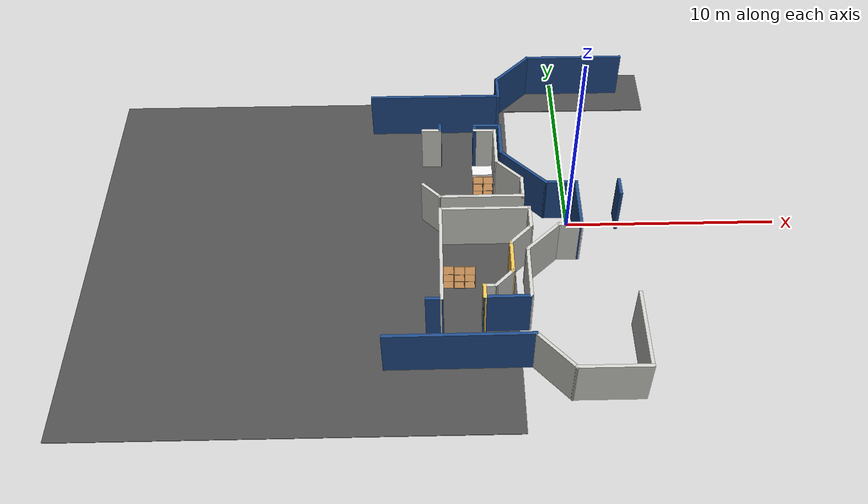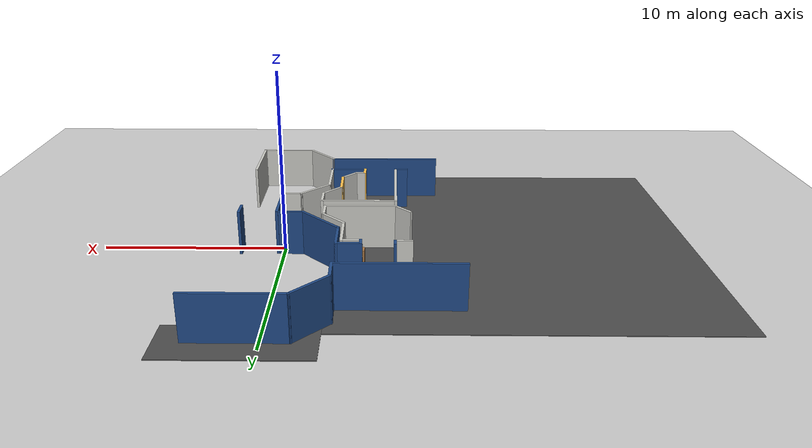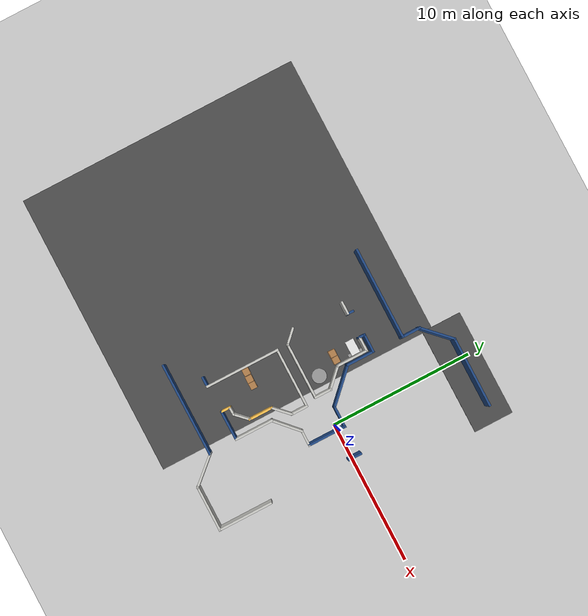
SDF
<sdf version="1.7">
 <world name="default">
  <model name="ground_plane">
   <static>1</static>
   <link name="link">
    <collision name="collision">
     <geometry><plane><normal>0 0 1</normal><size>100 100</size></plane></geometry>
     <surface><friction><ode><mu>100</mu><mu2>50</mu2></ode></friction></surface>
    </collision>
    <visual name="visual">
     <cast_shadows>0</cast_shadows>
     <geometry><plane><normal>0 0 1</normal><size>100 100</size></plane></geometry>
     <material>
      <script><uri>file://media/materials/scripts/gazebo.material</uri><name>Gazebo/Grey</name></script>
     </material>
    </visual>
   </link>
  </model>
  <model name="among_us_world">
   <pose>0.133216 -0.12311 0 0 -0 0</pose>
   <link name="Wall_0">
    <collision name="Wall_0_Collision">
     <geometry><box><size>5 0.15 2.5</size></box></geometry>
     <pose>0 0 1.25 0 -0 0</pose>
    </collision>
    <visual name="Wall_0_Visual">
     <pose>0 0 1.25 0 -0 0</pose>
     <geometry><box><size>5 0.15 2.5</size></box></geometry>
     <material>
      <script><uri>file://media/materials/scripts/gazebo.material</uri><name>Gazebo/Motorway</name></script>
      <ambient>0.12549 0.290196 0.529412 1</ambient>
     </material>
     <meta><layer>0</layer></meta>
    </visual>
    <pose>0.883234 9.56872 0 0 -0 0</pose>
   </link>
   <link name="Wall_103">
    <collision name="Wall_103_Collision">
     <geometry><box><size>1.25 0.15 2.5</size></box></geometry>
     <pose>0 0 1.25 0 -0 0</pose>
    </collision>
    <visual name="Wall_103_Visual">
     <pose>0 0 1.25 0 -0 0</pose>
     <geometry><box><size>1.25 0.15 2.5</size></box></geometry>
     <material>
      <script><uri>file://media/materials/scripts/gazebo.material</uri><name>Gazebo/CeilingTiled</name></script>
      <ambient>0.12549 0.290196 0.529412 1</ambient>
     </material>
     <meta><layer>0</layer></meta>
    </visual>
    <pose>-6.5956 0.241636 0 0 -0 -0.785398</pose>
   </link>
   <link name="Wall_104">
    <collision name="Wall_104_Collision">
     <geometry><box><size>4 0.15 2.5</size></box></geometry>
     <pose>0 0 1.25 0 -0 0</pose>
    </collision>
    <visual name="Wall_104_Visual">
     <pose>0 0 1.25 0 -0 0</pose>
     <geometry><box><size>4 0.15 2.5</size></box></geometry>
     <material>
      <script><uri>file://media/materials/scripts/gazebo.material</uri><name>Gazebo/CeilingTiled</name></script>
      <ambient>0.12549 0.290196 0.529412 1</ambient>
     </material>
     <meta><layer>0</layer></meta>
    </visual>
    <pose>-4.28169 -0.147272 0 0 -0 0</pose>
   </link>
   <link name="Wall_105">
    <collision name="Wall_105_Collision">
     <geometry><box><size>1.25 0.15 2.5</size></box></geometry>
     <pose>0 0 1.25 0 -0 0</pose>
    </collision>
    <visual name="Wall_105_Visual">
     <pose>0 0 1.25 0 -0 0</pose>
     <geometry><box><size>1.25 0.15 2.5</size></box></geometry>
     <material>
      <script><uri>file://media/materials/scripts/gazebo.material</uri><name>Gazebo/CeilingTiled</name></script>
      <ambient>0.12549 0.290196 0.529412 1</ambient>
     </material>
     <meta><layer>0</layer></meta>
    </visual>
    <pose>-2.35669 0.402728 0 0 -0 1.5708</pose>
   </link>
   <link name="Wall_106">
    <collision name="Wall_106_Collision">
     <geometry><box><size>1.75 0.15 2.5</size></box></geometry>
     <pose>0 0 1.25 0 -0 0</pose>
    </collision>
    <visual name="Wall_106_Visual">
     <pose>0 0 1.25 0 -0 0</pose>
     <geometry><box><size>1.75 0.15 2.5</size></box></geometry>
     <material>
      <script><uri>file://media/materials/scripts/gazebo.material</uri><name>Gazebo/CeilingTiled</name></script>
      <ambient>0.12549 0.290196 0.529412 1</ambient>
     </material>
     <meta><layer>0</layer></meta>
    </visual>
    <pose>-2.92238 1.51841 0 0 -0 2.35619</pose>
   </link>
   <link name="Wall_108">
    <collision name="Wall_108_Collision">
     <geometry><box><size>2.25 0.15 2.5</size></box></geometry>
     <pose>0 0 1.25 0 -0 0</pose>
    </collision>
    <visual name="Wall_108_Visual">
     <pose>0 0 1.25 0 -0 0</pose>
     <geometry><box><size>2.25 0.15 2.5</size></box></geometry>
     <material>
      <script><uri>file://media/materials/scripts/gazebo.material</uri><name>Gazebo/CeilingTiled</name></script>
      <ambient>0.12549 0.290196 0.529412 1</ambient>
     </material>
     <meta><layer>0</layer></meta>
    </visual>
    <pose>-3.48806 3.1341 0 0 -0 1.5708</pose>
   </link>
   <link name="Wall_109">
    <collision name="Wall_109_Collision">
     <geometry><box><size>1.12677 0.15 2.5</size></box></geometry>
     <pose>0 0 1.25 0 -0 0</pose>
    </collision>
    <visual name="Wall_109_Visual">
     <pose>0 0 1.25 0 -0 0</pose>
     <geometry><box><size>1.12677 0.15 2.5</size></box></geometry>
     <material>
      <script><uri>file://media/materials/scripts/gazebo.material</uri><name>Gazebo/CeilingTiled</name></script>
      <ambient>0.12549 0.290196 0.529412 1</ambient>
     </material>
     <meta><layer>0</layer></meta>
    </visual>
    <pose>-3.97634 4.1841 0 0 -0 3.14159</pose>
   </link>
   <link name="Wall_110">
    <collision name="Wall_110_Collision">
     <geometry><box><size>0.5 0.15 2.5</size></box></geometry>
     <pose>0 0 1.25 0 -0 0</pose>
    </collision>
    <visual name="Wall_110_Visual">
     <pose>0 0 1.25 0 -0 0</pose>
     <geometry><box><size>0.5 0.15 2.5</size></box></geometry>
     <material>
      <script><uri>file://media/materials/scripts/gazebo.material</uri><name>Gazebo/Grey</name></script>
      <ambient>0.12549 0.290196 0.529412 1</ambient>
     </material>
     <meta><layer>0</layer></meta>
    </visual>
    <pose>-4.46462 4.33852 0 0 -0 1.5708</pose>
   </link>
   <link name="Wall_111">
    <collision name="Wall_111_Collision">
     <geometry><box><size>1.37673 0.15 2.5</size></box></geometry>
     <pose>0 0 1.25 0 -0 0</pose>
    </collision>
    <visual name="Wall_111_Visual">
     <pose>0 0 1.25 0 -0 0</pose>
     <geometry><box><size>1.37673 0.15 2.5</size></box></geometry>
     <material>
      <script><uri>file://media/materials/scripts/gazebo.material</uri><name>Gazebo/Motorway</name></script>
      <ambient>0.12549 0.290196 0.529412 1</ambient>
     </material>
     <meta><layer>0</layer></meta>
    </visual>
    <pose>-3.85134 4.5341 0 0 -0 0</pose>
   </link>
   <link name="Wall_112">
    <collision name="Wall_112_Collision">
     <geometry><box><size>2 0.15 2.5</size></box></geometry>
     <pose>0 0 1.25 0 -0 0</pose>
    </collision>
    <visual name="Wall_112_Visual">
     <pose>0 0 1.25 0 -0 0</pose>
     <geometry><box><size>2 0.15 2.5</size></box></geometry>
     <material>
      <script><uri>file://media/materials/scripts/gazebo.material</uri><name>Gazebo/Motorway</name></script>
      <ambient>0.12549 0.290196 0.529412 1</ambient>
     </material>
     <meta><layer>0</layer></meta>
    </visual>
    <pose>-3.23806 3.6091 0 0 -0 -1.5708</pose>
   </link>
   <link name="Wall_114">
    <collision name="Wall_114_Collision">
     <geometry><box><size>3 0.15 2.5</size></box></geometry>
     <pose>0 0 1.25 0 -0 0</pose>
    </collision>
    <visual name="Wall_114_Visual">
     <pose>0 0 1.25 0 -0 0</pose>
     <geometry><box><size>3 0.15 2.5</size></box></geometry>
     <material>
      <script><uri>file://media/materials/scripts/gazebo.material</uri><name>Gazebo/Motorway</name></script>
      <ambient>0.12549 0.290196 0.529412 1</ambient>
     </material>
     <meta><layer>0</layer></meta>
    </visual>
    <pose>-2.23043 1.67647 0 0 -0 -0.785398</pose>
   </link>
   <link name="Wall_115">
    <collision name="Wall_115_Collision">
     <geometry><box><size>1.5655 0.15 2.5</size></box></geometry>
     <pose>0 0 1.25 0 -0 0</pose>
    </collision>
    <visual name="Wall_115_Visual">
     <pose>0 0 1.25 0 -0 0</pose>
     <geometry><box><size>1.5655 0.15 2.5</size></box></geometry>
     <material>
      <script><uri>file://media/materials/scripts/gazebo.material</uri><name>Gazebo/Motorway</name></script>
      <ambient>0.12549 0.290196 0.529412 1</ambient>
     </material>
     <meta><layer>0</layer></meta>
    </visual>
    <pose>-0.515099 0.662156 0 0 -0 -0.00945</pose>
   </link>
   <link name="Wall_116">
    <collision name="Wall_116_Collision">
     <geometry><box><size>2.75 0.15 2.5</size></box></geometry>
     <pose>0 0 1.25 0 -0 0</pose>
    </collision>
    <visual name="Wall_116_Visual">
     <pose>0 0 1.25 0 -0 0</pose>
     <geometry><box><size>2.75 0.15 2.5</size></box></geometry>
     <material>
      <script><uri>file://media/materials/scripts/gazebo.material</uri><name>Gazebo/Motorway</name></script>
      <ambient>0.12549 0.290196 0.529412 1</ambient>
     </material>
     <meta><layer>0</layer></meta>
    </visual>
    <pose>0.19261 -0.637844 0 0 -0 -1.5708</pose>
   </link>
   <link name="Wall_145">
    <collision name="Wall_145_Collision">
     <geometry><box><size>5.25 0.15 2.5</size></box></geometry>
     <pose>0 0 1.25 0 -0 0</pose>
    </collision>
    <visual name="Wall_145_Visual">
     <pose>0 0 1.25 0 -0 0</pose>
     <geometry><box><size>5.25 0.15 2.5</size></box></geometry>
     <material>
      <script><uri>file://media/materials/scripts/gazebo.material</uri><name>Gazebo/CeilingTiled</name></script>
      <ambient>1 0.764706 0.305882 1</ambient>
     </material>
     <meta><layer>0</layer></meta>
    </visual>
    <pose>-6.21277 -3.45528 0 0 -0 1.5708</pose>
   </link>
   <link name="Wall_146">
    <collision name="Wall_146_Collision">
     <geometry><box><size>4.25 0.15 2.5</size></box></geometry>
     <pose>0 0 1.25 0 -0 0</pose>
    </collision>
    <visual name="Wall_146_Visual">
     <pose>0 0 1.25 0 -0 0</pose>
     <geometry><box><size>4.25 0.15 2.5</size></box></geometry>
     <material>
      <script><uri>file://media/materials/scripts/gazebo.material</uri><name>Gazebo/CeilingTiled</name></script>
      <ambient>1 0.764706 0.305882 1</ambient>
     </material>
     <meta><layer>0</layer></meta>
    </visual>
    <pose>-4.16277 -0.905283 0 0 -0 0</pose>
   </link>
   <link name="Wall_147">
    <collision name="Wall_147_Collision">
     <geometry><box><size>1.25 0.15 2.5</size></box></geometry>
     <pose>0 0 1.25 0 -0 0</pose>
    </collision>
    <visual name="Wall_147_Visual">
     <pose>0 0 1.25 0 -0 0</pose>
     <geometry><box><size>1.25 0.15 2.5</size></box></geometry>
     <material>
      <script><uri>file://media/materials/scripts/gazebo.material</uri><name>Gazebo/CeilingTiled</name></script>
      <ambient>1 0.764706 0.305882 1</ambient>
     </material>
     <meta><layer>0</layer></meta>
    </visual>
    <pose>-2.11277 -1.45528 0 0 -0 -1.5708</pose>
   </link>
   <link name="Wall_148">
    <collision name="Wall_148_Collision">
     <geometry><box><size>1.5 0.15 2.5</size></box></geometry>
     <pose>0 0 1.25 0 -0 0</pose>
    </collision>
    <visual name="Wall_148_Visual">
     <pose>0 0 1.25 0 -0 0</pose>
     <geometry><box><size>1.5 0.15 2.5</size></box></geometry>
     <material>
      <script><uri>file://media/materials/scripts/gazebo.material</uri><name>Gazebo/CeilingTiled</name></script>
      <ambient>1 0.764706 0.305882 1</ambient>
     </material>
     <meta><layer>0</layer></meta>
    </visual>
    <pose>-2.59027 -2.48228 0 0 -0 -2.35672</pose>
   </link>
   <link name="Wall_149">
    <collision name="Wall_149_Collision">
     <geometry><box><size>1.75 0.15 2.5</size></box></geometry>
     <pose>0 0 1.25 0 -0 0</pose>
    </collision>
    <visual name="Wall_149_Visual">
     <pose>0 0 1.25 0 -0 0</pose>
     <geometry><box><size>1.75 0.15 2.5</size></box></geometry>
     <material>
      <script><uri>file://media/materials/scripts/gazebo.material</uri><name>Gazebo/Grey</name></script>
      <ambient>1 0.764706 0.305882 1</ambient>
     </material>
     <meta><layer>0</layer></meta>
    </visual>
    <pose>-3.06777 -3.75928 0 0 -0 -1.5708</pose>
   </link>
   <link name="Wall_150">
    <collision name="Wall_150_Collision">
     <geometry><box><size>1.25 0.15 2.5</size></box></geometry>
     <pose>0 0 1.25 0 -0 0</pose>
    </collision>
    <visual name="Wall_150_Visual">
     <pose>0 0 1.25 0 -0 0</pose>
     <geometry><box><size>1.25 0.15 2.5</size></box></geometry>
     <material>
      <script><uri>file://media/materials/scripts/gazebo.material</uri><name>Gazebo/CeilingTiled</name></script>
      <ambient>1 0.764706 0.305882 1</ambient>
     </material>
     <meta><layer>0</layer></meta>
    </visual>
    <pose>-3.45677 -4.94828 0 0 -0 -2.35619</pose>
   </link>
   <link name="Wall_153">
    <collision name="Wall_153_Collision">
     <geometry><box><size>0.660076 0.15 2.5</size></box></geometry>
     <pose>0 0 1.25 0 -0 0</pose>
    </collision>
    <visual name="Wall_153_Visual">
     <pose>0 0 1.25 0 -0 0</pose>
     <geometry><box><size>0.660076 0.15 2.5</size></box></geometry>
     <material>
      <script><uri>file://media/materials/scripts/gazebo.material</uri><name>Gazebo/CeilingTiled</name></script>
      <ambient>1 0.764706 0.305882 1</ambient>
     </material>
     <meta><layer>0</layer></meta>
    </visual>
    <pose>-4.10077 -5.34628 0 0 -0 -3.10631</pose>
   </link>
   <link name="Wall_154">
    <collision name="Wall_154_Collision">
     <geometry><box><size>0.75 0.15 2.5</size></box></geometry>
     <pose>0 0 1.25 0 -0 0</pose>
    </collision>
    <visual name="Wall_154_Visual">
     <pose>0 0 1.25 0 -0 0</pose>
     <geometry><box><size>0.75 0.15 2.5</size></box></geometry>
     <material>
      <script><uri>file://media/materials/scripts/gazebo.material</uri><name>Gazebo/Grey</name></script>
      <ambient>1 0.764706 0.305882 1</ambient>
     </material>
     <meta><layer>0</layer></meta>
    </visual>
    <pose>-4.35577 -5.65528 0 0 -0 -1.5708</pose>
   </link>
   <link name="Wall_155">
    <collision name="Wall_155_Collision">
     <geometry><box><size>2.16008 0.15 2.5</size></box></geometry>
     <pose>0 0 1.25 0 -0 0</pose>
    </collision>
    <visual name="Wall_155_Visual">
     <pose>0 0 1.25 0 -0 0</pose>
     <geometry><box><size>2.16008 0.15 2.5</size></box></geometry>
     <material>
      <script><uri>file://media/materials/scripts/gazebo.material</uri><name>Gazebo/Motorway</name></script>
      <ambient>0.12549 0.290196 0.529412 1</ambient>
     </material>
     <meta><layer>0</layer></meta>
    </visual>
    <pose>-3.35065 -5.9463 0 0 -0 0.008937</pose>
   </link>
   <link name="Wall_156">
    <collision name="Wall_156_Collision">
     <geometry><box><size>2.75 0.15 2.5</size></box></geometry>
     <pose>0 0 1.25 0 -0 0</pose>
    </collision>
    <visual name="Wall_156_Visual">
     <pose>0 0 1.25 0 -0 0</pose>
     <geometry><box><size>2.75 0.15 2.5</size></box></geometry>
     <material>
      <script><uri>file://media/materials/scripts/gazebo.material</uri><name>Gazebo/CeilingTiled</name></script>
      <ambient>0.333333 0.341176 0.32549 1</ambient>
     </material>
     <meta><layer>0</layer></meta>
    </visual>
    <pose>-2.34553 -4.63732 0 0 -0 1.5708</pose>
   </link>
   <link name="Wall_160">
    <collision name="Wall_160_Collision">
     <geometry><box><size>0.797757 0.15 2.5</size></box></geometry>
     <pose>0 0 1.25 0 -0 0</pose>
    </collision>
    <visual name="Wall_160_Visual">
     <pose>0 0 1.25 0 -0 0</pose>
     <geometry><box><size>0.797757 0.15 2.5</size></box></geometry>
     <material>
      <script><uri>file://media/materials/scripts/gazebo.material</uri><name>Gazebo/Motorway</name></script>
      <ambient>0.12549 0.290196 0.529412 1</ambient>
     </material>
     <meta><layer>0</layer></meta>
    </visual>
    <pose>-6.53682 -6.00509 0 0 -0 3.14101</pose>
   </link>
   <link name="Wall_184">
    <collision name="Wall_184_Collision">
     <geometry><box><size>1 0.15 2.5</size></box></geometry>
     <pose>0 0 1.25 0 -0 0</pose>
    </collision>
    <visual name="Wall_184_Visual">
     <pose>0 0 1.25 0 -0 0</pose>
     <geometry><box><size>1 0.15 2.5</size></box></geometry>
     <material>
      <script><uri>file://media/materials/scripts/gazebo.material</uri><name>Gazebo/Motorway</name></script>
      <ambient>0.12549 0.290196 0.529412 1</ambient>
     </material>
     <meta><layer>0</layer></meta>
    </visual>
    <pose>2.21722 0.328062 0 0 -0 -1.5708</pose>
   </link>
   <link name="Wall_195">
    <collision name="Wall_195_Collision">
     <geometry><box><size>2.43279 0.15 2.5</size></box></geometry>
     <pose>0 0 1.25 0 -0 0</pose>
    </collision>
    <visual name="Wall_195_Visual">
     <pose>0 0 1.25 0 -0 0</pose>
     <geometry><box><size>2.43279 0.15 2.5</size></box></geometry>
     <material>
      <script><uri>file://media/materials/scripts/gazebo.material</uri><name>Gazebo/CeilingTiled</name></script>
      <ambient>0.333333 0.341176 0.32549 1</ambient>
     </material>
     <meta><layer>0</layer></meta>
    </visual>
    <pose>-1.52341 -8.72218 0 0 -0 -0.835926</pose>
   </link>
   <link name="Wall_200">
    <collision name="Wall_200_Collision">
     <geometry><box><size>3.75 0.15 2.5</size></box></geometry>
     <pose>0 0 1.25 0 -0 0</pose>
    </collision>
    <visual name="Wall_200_Visual">
     <pose>0 0 1.25 0 -0 0</pose>
     <geometry><box><size>3.75 0.15 2.5</size></box></geometry>
     <material>
      <script><uri>file://media/materials/scripts/gazebo.material</uri><name>Gazebo/CeilingTiled</name></script>
      <ambient>0.333333 0.341176 0.32549 1</ambient>
     </material>
     <meta><layer>0</layer></meta>
    </visual>
    <pose>2.32919 -7.66138 0 0 -0 1.5708</pose>
   </link>
   <link name="Wall_202">
    <collision name="Wall_202_Collision">
     <geometry><box><size>3.25 0.15 2.5</size></box></geometry>
     <pose>0 0 1.25 0 -0 0</pose>
    </collision>
    <visual name="Wall_202_Visual">
     <pose>0 0 1.25 0 -0 0</pose>
     <geometry><box><size>3.25 0.15 2.5</size></box></geometry>
     <material>
      <script><uri>file://media/materials/scripts/gazebo.material</uri><name>Gazebo/CeilingTiled</name></script>
      <ambient>1 1 1 1</ambient>
     </material>
     <meta><layer>0</layer></meta>
    </visual>
    <pose>0.791885 -9.56227 0 0 -0 0</pose>
   </link>
   <link name="Wall_204">
    <collision name="Wall_204_Collision">
     <geometry><box><size>1.18966 0.15 2.5</size></box></geometry>
     <pose>0 0 1.25 0 -0 0</pose>
    </collision>
    <visual name="Wall_204_Visual">
     <pose>0 0 1.25 0 -0 0</pose>
     <geometry><box><size>1.18966 0.15 2.5</size></box></geometry>
     <material>
      <script><uri>file://media/materials/scripts/gazebo.material</uri><name>Gazebo/CeilingTiled</name></script>
      <ambient>0.333333 0.341176 0.32549 1</ambient>
     </material>
     <meta><layer>0</layer></meta>
    </visual>
    <pose>-0.32722 -1.93701 0 0 -0 3.14</pose>
   </link>
   <link name="Wall_206">
    <collision name="Wall_206_Collision">
     <geometry><box><size>2.20149 0.15 2.5</size></box></geometry>
     <pose>0 0 1.25 0 -0 0</pose>
    </collision>
    <visual name="Wall_206_Visual">
     <pose>0 0 1.25 0 -0 0</pose>
     <geometry><box><size>2.20149 0.15 2.5</size></box></geometry>
     <material>
      <script><uri>file://media/materials/scripts/gazebo.material</uri><name>Gazebo/CeilingTiled</name></script>
      <ambient>0.333333 0.341176 0.32549 1</ambient>
     </material>
     <meta><layer>0</layer></meta>
    </visual>
    <pose>-1.59629 -2.63675 0 0 -0 0.751837</pose>
   </link>
   <link name="Wall_29">
    <collision name="Wall_29_Collision">
     <geometry><box><size>2.5 0.15 2.5</size></box></geometry>
     <pose>0 0 1.25 0 -0 0</pose>
    </collision>
    <visual name="Wall_29_Visual">
     <pose>0 0 1.25 0 -0 0</pose>
     <geometry><box><size>2.5 0.15 2.5</size></box></geometry>
     <material>
      <script><uri>file://media/materials/scripts/gazebo.material</uri><name>Gazebo/Motorway</name></script>
      <ambient>0.12549 0.290196 0.529412 1</ambient>
     </material>
     <meta><layer>0</layer></meta>
    </visual>
    <pose>-2.37241 8.73794 0 0 -0 -2.35611</pose>
   </link>
   <link name="Wall_30">
    <collision name="Wall_30_Collision">
     <geometry><box><size>1.4062 0.15 2.5</size></box></geometry>
     <pose>0 0 1.25 0 -0 0</pose>
    </collision>
    <visual name="Wall_30_Visual">
     <pose>0 0 1.25 0 -0 0</pose>
     <geometry><box><size>1.4062 0.15 2.5</size></box></geometry>
     <material>
      <script><uri>file://media/materials/scripts/gazebo.material</uri><name>Gazebo/Motorway</name></script>
      <ambient>0.12549 0.290196 0.529412 1</ambient>
     </material>
     <meta><layer>0</layer></meta>
    </visual>
    <pose>-3.19527 7.27912 0 0 -0 -1.55841</pose>
   </link>
   <link name="Wall_31">
    <collision name="Wall_31_Collision">
     <geometry><box><size>6.5 0.15 2.5</size></box></geometry>
     <pose>0 0 1.25 0 -0 0</pose>
    </collision>
    <visual name="Wall_31_Visual">
     <pose>0 0 1.25 0 -0 0</pose>
     <geometry><box><size>6.5 0.15 2.5</size></box></geometry>
     <material>
      <script><uri>file://media/materials/scripts/gazebo.material</uri><name>Gazebo/Motorway</name></script>
      <ambient>0.12549 0.290196 0.529412 1</ambient>
     </material>
     <meta><layer>0</layer></meta>
    </visual>
    <pose>-6.36249 6.66662 0 0 -0 3.14159</pose>
   </link>
   <link name="Wall_61">
    <collision name="Wall_61_Collision">
     <geometry><box><size>6.57551 0.15 2.5</size></box></geometry>
     <pose>0 0 1.25 0 -0 0</pose>
    </collision>
    <visual name="Wall_61_Visual">
     <pose>0 0 1.25 0 -0 0</pose>
     <geometry><box><size>6.57551 0.15 2.5</size></box></geometry>
     <material>
      <script><uri>file://media/materials/scripts/gazebo.material</uri><name>Gazebo/Motorway</name></script>
      <ambient>0.12549 0.290196 0.529412 1</ambient>
     </material>
     <meta><layer>0</layer></meta>
    </visual>
    <pose>-5.51319 -7.89091 0 0 -0 0.004842</pose>
   </link>
   <link name="Wall_97">
    <collision name="Wall_97_Collision">
     <geometry><box><size>0.5 0.15 2.5</size></box></geometry>
     <pose>0 0 1.25 0 -0 0</pose>
    </collision>
    <visual name="Wall_97_Visual">
     <pose>0 0 1.25 0 -0 0</pose>
     <geometry><box><size>0.5 0.15 2.5</size></box></geometry>
     <material>
      <script><uri>file://media/materials/scripts/gazebo.material</uri><name>Gazebo/Grey</name></script>
      <ambient>0.12549 0.290196 0.529412 1</ambient>
     </material>
     <meta><layer>0</layer></meta>
    </visual>
    <pose>-6.16454 4.40555 0 0 -0 -1.5708</pose>
   </link>
   <link name="Wall_98">
    <collision name="Wall_98_Collision">
     <geometry><box><size>0.954414 0.15 2.5</size></box></geometry>
     <pose>0 0 1.25 0 -0 0</pose>
    </collision>
    <visual name="Wall_98_Visual">
     <pose>0 0 1.25 0 -0 0</pose>
     <geometry><box><size>0.954414 0.15 2.5</size></box></geometry>
     <material>
      <script><uri>file://media/materials/scripts/gazebo.material</uri><name>Gazebo/CeilingTiled</name></script>
      <ambient>0.12549 0.290196 0.529412 1</ambient>
     </material>
     <meta><layer>0</layer></meta>
    </visual>
    <pose>-6.5823 4.23055 0 0 -0 3.14159</pose>
   </link>
   <static>1</static>
  </model>
  <model name="cabinet_clone">
   <static>1</static>
   <link name="cabinet_bottom_plate">
    <inertial>
     <pose>0 0 -1 0 -0 0</pose>
     <inertia><ixx>2.05</ixx><ixy>0</ixy><ixz>0</ixz><iyy>2.05</iyy><iyz>0</iyz><izz>2.05</izz></inertia>
     <mass>25</mass>
    </inertial>
    <collision name="cabinet_bottom_plate_geom">
     <pose>0 0 0.01 0 -0 0</pose>
     <geometry><box><size>0.45 0.45 0.02</size></box></geometry>
    </collision>
    <visual name="cabinet_bottom_plate_geom_visual">
     <pose>0 0 0.01 0 -0 0</pose>
     <geometry><box><size>0.45 0.45 0.02</size></box></geometry>
     <material>
      <script><uri>file://media/materials/scripts/gazebo.material</uri><name>Gazebo/Wood</name></script>
     </material>
    </visual>
    <collision name="cabinet_bottom_plate_geom_cabinet_back_plate">
     <pose>0.235 0 0.51 0 -0 0</pose>
     <geometry><box><size>0.02 0.45 1.02</size></box></geometry>
    </collision>
    <visual name="cabinet_bottom_plate_geom_cabinet_back_plate_visual">
     <pose>0.235 0 0.51 0 -0 0</pose>
     <geometry><box><size>0.02 0.45 1.02</size></box></geometry>
     <material>
      <script><uri>file://media/materials/scripts/gazebo.material</uri><name>Gazebo/Wood</name></script>
     </material>
    </visual>
    <collision name="cabinet_bottom_plate_geom_cabinet_left_plate">
     <pose>0 0.235 0.51 0 -0 0</pose>
     <geometry><box><size>0.45 0.02 1.02</size></box></geometry>
    </collision>
    <visual name="cabinet_bottom_plate_geom_cabinet_left_plate_visual">
     <pose>0 0.235 0.51 0 -0 0</pose>
     <geometry><box><size>0.45 0.02 1.02</size></box></geometry>
     <material>
      <script><uri>file://media/materials/scripts/gazebo.material</uri><name>Gazebo/Wood</name></script>
     </material>
    </visual>
    <collision name="cabinet_bottom_plate_geom_cabinet_middle_plate">
     <pose>0 0 0.51 0 -0 0</pose>
     <geometry><box><size>0.45 0.45 0.02</size></box></geometry>
    </collision>
    <visual name="cabinet_bottom_plate_geom_cabinet_middle_plate_visual">
     <pose>0 0 0.51 0 -0 0</pose>
     <geometry><box><size>0.45 0.45 0.02</size></box></geometry>
     <material>
      <script><uri>file://media/materials/scripts/gazebo.material</uri><name>Gazebo/Wood</name></script>
     </material>
    </visual>
    <collision name="cabinet_bottom_plate_geom_cabinet_right_plate">
     <pose>0 -0.235 0.51 0 -0 0</pose>
     <geometry><box><size>0.45 0.02 1.02</size></box></geometry>
    </collision>
    <visual name="cabinet_bottom_plate_geom_cabinet_right_plate_visual">
     <pose>0 -0.235 0.51 0 -0 0</pose>
     <geometry><box><size>0.45 0.02 1.02</size></box></geometry>
     <material>
      <script><uri>file://media/materials/scripts/gazebo.material</uri><name>Gazebo/Wood</name></script>
     </material>
    </visual>
    <collision name="cabinet_bottom_plate_geom_cabinet_top_plate">
     <pose>0 0 1.01 0 -0 0</pose>
     <geometry><box><size>0.45 0.45 0.02</size></box></geometry>
    </collision>
    <visual name="cabinet_bottom_plate_geom_cabinet_top_plate_visual">
     <pose>0 0 1.01 0 -0 0</pose>
     <geometry><box><size>0.45 0.45 0.02</size></box></geometry>
     <material>
      <script><uri>file://media/materials/scripts/gazebo.material</uri><name>Gazebo/Wood</name></script>
     </material>
    </visual>
   </link>
   <pose>-5.25916 -3.50994 0 0 -0 1.57</pose>
  </model>
  <model name="cabinet_clone_0">
   <static>1</static>
   <link name="cabinet_bottom_plate">
    <inertial>
     <pose>0 0 -1 0 -0 0</pose>
     <inertia><ixx>2.05</ixx><ixy>0</ixy><ixz>0</ixz><iyy>2.05</iyy><iyz>0</iyz><izz>2.05</izz></inertia>
     <mass>25</mass>
    </inertial>
    <collision name="cabinet_bottom_plate_geom">
     <pose>0 0 0.01 0 -0 0</pose>
     <geometry><box><size>0.45 0.45 0.02</size></box></geometry>
    </collision>
    <visual name="cabinet_bottom_plate_geom_visual">
     <pose>0 0 0.01 0 -0 0</pose>
     <geometry><box><size>0.45 0.45 0.02</size></box></geometry>
     <material>
      <script><uri>file://media/materials/scripts/gazebo.material</uri><name>Gazebo/Wood</name></script>
     </material>
    </visual>
    <collision name="cabinet_bottom_plate_geom_cabinet_back_plate">
     <pose>0.235 0 0.51 0 -0 0</pose>
     <geometry><box><size>0.02 0.45 1.02</size></box></geometry>
    </collision>
    <visual name="cabinet_bottom_plate_geom_cabinet_back_plate_visual">
     <pose>0.235 0 0.51 0 -0 0</pose>
     <geometry><box><size>0.02 0.45 1.02</size></box></geometry>
     <material>
      <script><uri>file://media/materials/scripts/gazebo.material</uri><name>Gazebo/Wood</name></script>
     </material>
    </visual>
    <collision name="cabinet_bottom_plate_geom_cabinet_left_plate">
     <pose>0 0.235 0.51 0 -0 0</pose>
     <geometry><box><size>0.45 0.02 1.02</size></box></geometry>
    </collision>
    <visual name="cabinet_bottom_plate_geom_cabinet_left_plate_visual">
     <pose>0 0.235 0.51 0 -0 0</pose>
     <geometry><box><size>0.45 0.02 1.02</size></box></geometry>
     <material>
      <script><uri>file://media/materials/scripts/gazebo.material</uri><name>Gazebo/Wood</name></script>
     </material>
    </visual>
    <collision name="cabinet_bottom_plate_geom_cabinet_middle_plate">
     <pose>0 0 0.51 0 -0 0</pose>
     <geometry><box><size>0.45 0.45 0.02</size></box></geometry>
    </collision>
    <visual name="cabinet_bottom_plate_geom_cabinet_middle_plate_visual">
     <pose>0 0 0.51 0 -0 0</pose>
     <geometry><box><size>0.45 0.45 0.02</size></box></geometry>
     <material>
      <script><uri>file://media/materials/scripts/gazebo.material</uri><name>Gazebo/Wood</name></script>
     </material>
    </visual>
    <collision name="cabinet_bottom_plate_geom_cabinet_right_plate">
     <pose>0 -0.235 0.51 0 -0 0</pose>
     <geometry><box><size>0.45 0.02 1.02</size></box></geometry>
    </collision>
    <visual name="cabinet_bottom_plate_geom_cabinet_right_plate_visual">
     <pose>0 -0.235 0.51 0 -0 0</pose>
     <geometry><box><size>0.45 0.02 1.02</size></box></geometry>
     <material>
      <script><uri>file://media/materials/scripts/gazebo.material</uri><name>Gazebo/Wood</name></script>
     </material>
    </visual>
    <collision name="cabinet_bottom_plate_geom_cabinet_top_plate">
     <pose>0 0 1.01 0 -0 0</pose>
     <geometry><box><size>0.45 0.45 0.02</size></box></geometry>
    </collision>
    <visual name="cabinet_bottom_plate_geom_cabinet_top_plate_visual">
     <pose>0 0 1.01 0 -0 0</pose>
     <geometry><box><size>0.45 0.45 0.02</size></box></geometry>
     <material>
      <script><uri>file://media/materials/scripts/gazebo.material</uri><name>Gazebo/Wood</name></script>
     </material>
    </visual>
   </link>
   <pose>-4.77375 -3.5118 0 0 -0 1.57</pose>
  </model>
  <model name="cabinet_clone_0_clone">
   <static>1</static>
   <link name="cabinet_bottom_plate">
    <inertial>
     <pose>0 0 -1 0 -0 0</pose>
     <inertia><ixx>2.05</ixx><ixy>0</ixy><ixz>0</ixz><iyy>2.05</iyy><iyz>0</iyz><izz>2.05</izz></inertia>
     <mass>25</mass>
    </inertial>
    <collision name="cabinet_bottom_plate_geom">
     <pose>0 0 0.01 0 -0 0</pose>
     <geometry><box><size>0.45 0.45 0.02</size></box></geometry>
    </collision>
    <visual name="cabinet_bottom_plate_geom_visual">
     <pose>0 0 0.01 0 -0 0</pose>
     <geometry><box><size>0.45 0.45 0.02</size></box></geometry>
     <material>
      <script><uri>file://media/materials/scripts/gazebo.material</uri><name>Gazebo/Wood</name></script>
     </material>
    </visual>
    <collision name="cabinet_bottom_plate_geom_cabinet_back_plate">
     <pose>0.235 0 0.51 0 -0 0</pose>
     <geometry><box><size>0.02 0.45 1.02</size></box></geometry>
    </collision>
    <visual name="cabinet_bottom_plate_geom_cabinet_back_plate_visual">
     <pose>0.235 0 0.51 0 -0 0</pose>
     <geometry><box><size>0.02 0.45 1.02</size></box></geometry>
     <material>
      <script><uri>file://media/materials/scripts/gazebo.material</uri><name>Gazebo/Wood</name></script>
     </material>
    </visual>
    <collision name="cabinet_bottom_plate_geom_cabinet_left_plate">
     <pose>0 0.235 0.51 0 -0 0</pose>
     <geometry><box><size>0.45 0.02 1.02</size></box></geometry>
    </collision>
    <visual name="cabinet_bottom_plate_geom_cabinet_left_plate_visual">
     <pose>0 0.235 0.51 0 -0 0</pose>
     <geometry><box><size>0.45 0.02 1.02</size></box></geometry>
     <material>
      <script><uri>file://media/materials/scripts/gazebo.material</uri><name>Gazebo/Wood</name></script>
     </material>
    </visual>
    <collision name="cabinet_bottom_plate_geom_cabinet_middle_plate">
     <pose>0 0 0.51 0 -0 0</pose>
     <geometry><box><size>0.45 0.45 0.02</size></box></geometry>
    </collision>
    <visual name="cabinet_bottom_plate_geom_cabinet_middle_plate_visual">
     <pose>0 0 0.51 0 -0 0</pose>
     <geometry><box><size>0.45 0.45 0.02</size></box></geometry>
     <material>
      <script><uri>file://media/materials/scripts/gazebo.material</uri><name>Gazebo/Wood</name></script>
     </material>
    </visual>
    <collision name="cabinet_bottom_plate_geom_cabinet_right_plate">
     <pose>0 -0.235 0.51 0 -0 0</pose>
     <geometry><box><size>0.45 0.02 1.02</size></box></geometry>
    </collision>
    <visual name="cabinet_bottom_plate_geom_cabinet_right_plate_visual">
     <pose>0 -0.235 0.51 0 -0 0</pose>
     <geometry><box><size>0.45 0.02 1.02</size></box></geometry>
     <material>
      <script><uri>file://media/materials/scripts/gazebo.material</uri><name>Gazebo/Wood</name></script>
     </material>
    </visual>
    <collision name="cabinet_bottom_plate_geom_cabinet_top_plate">
     <pose>0 0 1.01 0 -0 0</pose>
     <geometry><box><size>0.45 0.45 0.02</size></box></geometry>
    </collision>
    <visual name="cabinet_bottom_plate_geom_cabinet_top_plate_visual">
     <pose>0 0 1.01 0 -0 0</pose>
     <geometry><box><size>0.45 0.45 0.02</size></box></geometry>
     <material>
      <script><uri>file://media/materials/scripts/gazebo.material</uri><name>Gazebo/Wood</name></script>
     </material>
    </visual>
   </link>
   <pose>-5.75867 -3.48219 0 0 -0 1.57</pose>
  </model>
  <model name="asphalt_plane">
   <static>1</static>
   <link name="link">
    <collision name="collision"><geometry><box><size>20 20 0.1</size></box></geometry></collision>
    <visual name="visual">
     <cast_shadows>0</cast_shadows>
     <geometry><box><size>20 20 0.1</size></box></geometry>
     <material>
      <script>
       <uri>model://asphalt_plane/materials/scripts</uri>
       <uri>model://asphalt_plane/materials/textures</uri>
       <name>vrc/asphalt</name>
      </script>
     </material>
    </visual>
   </link>
   <pose>-12.6134 -1.31009 -0.045514 0 -0 0</pose>
  </model>
  <model name="bed_clone_0">
   <link name="link_1">
    <inertial>
     <mass>0.166557</mass>
     <inertia>
      <ixx>0.00618823</ixx>
      <ixy>0</ixy>
      <ixz>0</ixz>
      <iyy>0.0149173</iyy>
      <iyz>0</iyz>
      <izz>0.0190304</izz>
     </inertia>
    </inertial>
    <pose>0.268517 -0.007523 0.053425 0 -0 0</pose>
    <visual name="visual">
     <geometry><box><size>1 0.609172 0.273416</size></box></geometry>
     <material>
      <lighting>1</lighting>
      <script><uri>file://media/materials/scripts/gazebo.material</uri><name>Gazebo/White</name></script>
      <shader type="pixel"><normal_map>__default__</normal_map></shader>
      <ambient>1 1 1 1</ambient>
      <diffuse>1 1 1 1</diffuse>
      <specular>0 0 0 1</specular>
      <emissive>0 0 0 1</emissive>
     </material>
    </visual>
    <collision name="collision">
     <geometry><box><size>1 0.609172 0.273416</size></box></geometry>
     <surface>
      <friction>
       <ode><mu>1</mu><mu2>1</mu2><fdir1>0 0 0</fdir1><slip1>0</slip1><slip2>0</slip2></ode>
       <torsional>
        <coefficient>1</coefficient>
        <patch_radius>0</patch_radius>
        <surface_radius>0</surface_radius>
        <use_patch_radius>1</use_patch_radius>
        <ode><slip>0</slip></ode>
       </torsional>
      </friction>
      <bounce><restitution_coefficient>0</restitution_coefficient><threshold>1e+06</threshold></bounce>
      <contact>
       <collide_without_contact>0</collide_without_contact>
       <collide_without_contact_bitmask>1</collide_without_contact_bitmask>
       <collide_bitmask>1</collide_bitmask>
       <ode>
        <soft_cfm>0</soft_cfm>
        <soft_erp>0.2</soft_erp>
        <kp>1e+13</kp>
        <kd>1</kd>
        <max_vel>0.01</max_vel>
        <min_depth>0</min_depth>
       </ode>
       <bullet>
        <split_impulse>1</split_impulse>
        <split_impulse_penetration_threshold>-0.01</split_impulse_penetration_threshold>
        <soft_cfm>0</soft_cfm>
        <soft_erp>0.2</soft_erp>
        <kp>1e+13</kp>
        <kd>1</kd>
       </bullet>
      </contact>
     </surface>
    </collision>
   </link>
   <link name="link_2">
    <inertial>
     <mass>0.00661892</mass>
     <inertia>
      <ixx>3.651e-05</ixx>
      <ixy>0</ixy>
      <ixz>0</ixz>
      <iyy>3.722e-05</iyy>
      <iyz>0</iyz>
      <izz>4.631e-05</izz>
     </inertia>
    </inertial>
    <pose>-0.144333 -0.400103 -0.02691 0 -0 0</pose>
    <visual name="visual">
     <geometry><box><size>0.206441 0.203314 0.157681</size></box></geometry>
     <material>
      <lighting>1</lighting>
      <script><uri>file://media/materials/scripts/gazebo.material</uri><name>Gazebo/Grey</name></script>
      <shader type="pixel"><normal_map>__default__</normal_map></shader>
      <ambient>0 0 0 1</ambient>
      <diffuse>0 0 0 1</diffuse>
      <specular>0 0 0 1</specular>
      <emissive>0 0 0 1</emissive>
     </material>
    </visual>
    <collision name="collision">
     <geometry><box><size>0.206441 0.203314 0.157681</size></box></geometry>
     <surface>
      <friction>
       <ode><mu>1</mu><mu2>1</mu2><fdir1>0 0 0</fdir1><slip1>0</slip1><slip2>0</slip2></ode>
       <torsional>
        <coefficient>1</coefficient>
        <patch_radius>0</patch_radius>
        <surface_radius>0</surface_radius>
        <use_patch_radius>1</use_patch_radius>
        <ode><slip>0</slip></ode>
       </torsional>
      </friction>
      <bounce><restitution_coefficient>0</restitution_coefficient><threshold>1e+06</threshold></bounce>
      <contact>
       <collide_without_contact>0</collide_without_contact>
       <collide_without_contact_bitmask>1</collide_without_contact_bitmask>
       <collide_bitmask>1</collide_bitmask>
       <ode>
        <soft_cfm>0</soft_cfm>
        <soft_erp>0.2</soft_erp>
        <kp>1e+13</kp>
        <kd>1</kd>
        <max_vel>0.01</max_vel>
        <min_depth>0</min_depth>
       </ode>
       <bullet>
        <split_impulse>1</split_impulse>
        <split_impulse_penetration_threshold>-0.01</split_impulse_penetration_threshold>
        <soft_cfm>0</soft_cfm>
        <soft_erp>0.2</soft_erp>
        <kp>1e+13</kp>
        <kd>1</kd>
       </bullet>
      </contact>
     </surface>
    </collision>
   </link>
   <link name="link_2_clone">
    <inertial>
     <mass>0.00661892</mass>
     <inertia>
      <ixx>3.651e-05</ixx>
      <ixy>0</ixy>
      <ixz>0</ixz>
      <iyy>3.722e-05</iyy>
      <iyz>0</iyz>
      <izz>4.631e-05</izz>
     </inertia>
    </inertial>
    <pose>-0.124183 0.407627 -0.026515 0 -0 0</pose>
    <visual name="visual">
     <geometry><box><size>0.206441 0.203314 0.157681</size></box></geometry>
     <material>
      <lighting>1</lighting>
      <script><uri>file://media/materials/scripts/gazebo.material</uri><name>Gazebo/Grey</name></script>
      <shader type="pixel"><normal_map>__default__</normal_map></shader>
      <ambient>0 0 0 1</ambient>
      <diffuse>0 0 0 1</diffuse>
      <specular>0 0 0 1</specular>
      <emissive>0 0 0 1</emissive>
     </material>
    </visual>
    <collision name="collision">
     <geometry><box><size>0.206441 0.203314 0.157681</size></box></geometry>
     <surface>
      <friction>
       <ode><mu>1</mu><mu2>1</mu2><fdir1>0 0 0</fdir1><slip1>0</slip1><slip2>0</slip2></ode>
       <torsional>
        <coefficient>1</coefficient>
        <patch_radius>0</patch_radius>
        <surface_radius>0</surface_radius>
        <use_patch_radius>1</use_patch_radius>
        <ode><slip>0</slip></ode>
       </torsional>
      </friction>
      <bounce><restitution_coefficient>0</restitution_coefficient><threshold>1e+06</threshold></bounce>
      <contact>
       <collide_without_contact>0</collide_without_contact>
       <collide_without_contact_bitmask>1</collide_without_contact_bitmask>
       <collide_bitmask>1</collide_bitmask>
       <ode>
        <soft_cfm>0</soft_cfm>
        <soft_erp>0.2</soft_erp>
        <kp>1e+13</kp>
        <kd>1</kd>
        <max_vel>0.01</max_vel>
        <min_depth>0</min_depth>
       </ode>
       <bullet>
        <split_impulse>1</split_impulse>
        <split_impulse_penetration_threshold>-0.01</split_impulse_penetration_threshold>
        <soft_cfm>0</soft_cfm>
        <soft_erp>0.2</soft_erp>
        <kp>1e+13</kp>
        <kd>1</kd>
       </bullet>
      </contact>
     </surface>
    </collision>
   </link>
   <joint name="link_2_JOINT_0" type="revolute">
    <parent>link_2</parent>
    <child>link_1</child>
    <axis>
     <xyz>1 0 0</xyz>
     <limit>
      <lower>-1.79769e+308</lower>
      <upper>1.79769e+308</upper>
      <effort>-1</effort>
      <velocity>-1</velocity>
     </limit>
     <dynamics>
      <spring_reference>0</spring_reference>
      <spring_stiffness>0</spring_stiffness>
      <damping>0</damping>
     </dynamics>
    </axis>
    <physics>
     <ode><limit><cfm>0</cfm><erp>0.2</erp></limit><suspension><cfm>0</cfm><erp>0.2</erp></suspension></ode>
    </physics>
   </joint>
   <joint name="link_2_clone_JOINT_1" type="revolute">
    <parent>link_2_clone</parent>
    <child>link_1</child>
    <axis>
     <xyz>1 0 0</xyz>
     <limit>
      <lower>-1.79769e+308</lower>
      <upper>1.79769e+308</upper>
      <effort>-1</effort>
      <velocity>-1</velocity>
     </limit>
     <dynamics>
      <spring_reference>0</spring_reference>
      <spring_stiffness>0</spring_stiffness>
      <damping>0</damping>
     </dynamics>
    </axis>
    <physics>
     <ode><limit><cfm>0</cfm><erp>0.2</erp></limit><suspension><cfm>0</cfm><erp>0.2</erp></suspension></ode>
    </physics>
   </joint>
   <static>1</static>
   <pose>-3.68143 3.45279 0.093275 2.7e-05 0 -3.13537</pose>
  </model>
  <model name="cabinet">
   <static>1</static>
   <link name="cabinet_bottom_plate">
    <inertial>
     <pose>0 0 -1 0 -0 0</pose>
     <inertia><ixx>2.05</ixx><ixy>0</ixy><ixz>0</ixz><iyy>2.05</iyy><iyz>0</iyz><izz>2.05</izz></inertia>
     <mass>25</mass>
    </inertial>
    <collision name="cabinet_bottom_plate_geom">
     <pose>0 0 0.01 0 -0 0</pose>
     <geometry><box><size>0.45 0.45 0.02</size></box></geometry>
    </collision>
    <visual name="cabinet_bottom_plate_geom_visual">
     <pose>0 0 0.01 0 -0 0</pose>
     <geometry><box><size>0.45 0.45 0.02</size></box></geometry>
     <material>
      <script><uri>file://media/materials/scripts/gazebo.material</uri><name>Gazebo/Wood</name></script>
     </material>
    </visual>
    <collision name="cabinet_bottom_plate_geom_cabinet_back_plate">
     <pose>0.235 0 0.51 0 -0 0</pose>
     <geometry><box><size>0.02 0.45 1.02</size></box></geometry>
    </collision>
    <visual name="cabinet_bottom_plate_geom_cabinet_back_plate_visual">
     <pose>0.235 0 0.51 0 -0 0</pose>
     <geometry><box><size>0.02 0.45 1.02</size></box></geometry>
     <material>
      <script><uri>file://media/materials/scripts/gazebo.material</uri><name>Gazebo/Wood</name></script>
     </material>
    </visual>
    <collision name="cabinet_bottom_plate_geom_cabinet_left_plate">
     <pose>0 0.235 0.51 0 -0 0</pose>
     <geometry><box><size>0.45 0.02 1.02</size></box></geometry>
    </collision>
    <visual name="cabinet_bottom_plate_geom_cabinet_left_plate_visual">
     <pose>0 0.235 0.51 0 -0 0</pose>
     <geometry><box><size>0.45 0.02 1.02</size></box></geometry>
     <material>
      <script><uri>file://media/materials/scripts/gazebo.material</uri><name>Gazebo/Wood</name></script>
     </material>
    </visual>
    <collision name="cabinet_bottom_plate_geom_cabinet_middle_plate">
     <pose>0 0 0.51 0 -0 0</pose>
     <geometry><box><size>0.45 0.45 0.02</size></box></geometry>
    </collision>
    <visual name="cabinet_bottom_plate_geom_cabinet_middle_plate_visual">
     <pose>0 0 0.51 0 -0 0</pose>
     <geometry><box><size>0.45 0.45 0.02</size></box></geometry>
     <material>
      <script><uri>file://media/materials/scripts/gazebo.material</uri><name>Gazebo/Wood</name></script>
     </material>
    </visual>
    <collision name="cabinet_bottom_plate_geom_cabinet_right_plate">
     <pose>0 -0.235 0.51 0 -0 0</pose>
     <geometry><box><size>0.45 0.02 1.02</size></box></geometry>
    </collision>
    <visual name="cabinet_bottom_plate_geom_cabinet_right_plate_visual">
     <pose>0 -0.235 0.51 0 -0 0</pose>
     <geometry><box><size>0.45 0.02 1.02</size></box></geometry>
     <material>
      <script><uri>file://media/materials/scripts/gazebo.material</uri><name>Gazebo/Wood</name></script>
     </material>
    </visual>
    <collision name="cabinet_bottom_plate_geom_cabinet_top_plate">
     <pose>0 0 1.01 0 -0 0</pose>
     <geometry><box><size>0.45 0.45 0.02</size></box></geometry>
    </collision>
    <visual name="cabinet_bottom_plate_geom_cabinet_top_plate_visual">
     <pose>0 0 1.01 0 -0 0</pose>
     <geometry><box><size>0.45 0.45 0.02</size></box></geometry>
     <material>
      <script><uri>file://media/materials/scripts/gazebo.material</uri><name>Gazebo/Wood</name></script>
     </material>
    </visual>
   </link>
   <pose>-3.71836 2.07896 0 0 -0 1.57</pose>
  </model>
  <model name="cabinet_clone_1">
   <static>1</static>
   <link name="cabinet_bottom_plate">
    <inertial>
     <pose>0 0 -1 0 -0 0</pose>
     <inertia><ixx>2.05</ixx><ixy>0</ixy><ixz>0</ixz><iyy>2.05</iyy><iyz>0</iyz><izz>2.05</izz></inertia>
     <mass>25</mass>
    </inertial>
    <collision name="cabinet_bottom_plate_geom">
     <pose>0 0 0.01 0 -0 0</pose>
     <geometry><box><size>0.45 0.45 0.02</size></box></geometry>
    </collision>
    <visual name="cabinet_bottom_plate_geom_visual">
     <pose>0 0 0.01 0 -0 0</pose>
     <geometry><box><size>0.45 0.45 0.02</size></box></geometry>
     <material>
      <script><uri>file://media/materials/scripts/gazebo.material</uri><name>Gazebo/Wood</name></script>
     </material>
    </visual>
    <collision name="cabinet_bottom_plate_geom_cabinet_back_plate">
     <pose>0.235 0 0.51 0 -0 0</pose>
     <geometry><box><size>0.02 0.45 1.02</size></box></geometry>
    </collision>
    <visual name="cabinet_bottom_plate_geom_cabinet_back_plate_visual">
     <pose>0.235 0 0.51 0 -0 0</pose>
     <geometry><box><size>0.02 0.45 1.02</size></box></geometry>
     <material>
      <script><uri>file://media/materials/scripts/gazebo.material</uri><name>Gazebo/Wood</name></script>
     </material>
    </visual>
    <collision name="cabinet_bottom_plate_geom_cabinet_left_plate">
     <pose>0 0.235 0.51 0 -0 0</pose>
     <geometry><box><size>0.45 0.02 1.02</size></box></geometry>
    </collision>
    <visual name="cabinet_bottom_plate_geom_cabinet_left_plate_visual">
     <pose>0 0.235 0.51 0 -0 0</pose>
     <geometry><box><size>0.45 0.02 1.02</size></box></geometry>
     <material>
      <script><uri>file://media/materials/scripts/gazebo.material</uri><name>Gazebo/Wood</name></script>
     </material>
    </visual>
    <collision name="cabinet_bottom_plate_geom_cabinet_middle_plate">
     <pose>0 0 0.51 0 -0 0</pose>
     <geometry><box><size>0.45 0.45 0.02</size></box></geometry>
    </collision>
    <visual name="cabinet_bottom_plate_geom_cabinet_middle_plate_visual">
     <pose>0 0 0.51 0 -0 0</pose>
     <geometry><box><size>0.45 0.45 0.02</size></box></geometry>
     <material>
      <script><uri>file://media/materials/scripts/gazebo.material</uri><name>Gazebo/Wood</name></script>
     </material>
    </visual>
    <collision name="cabinet_bottom_plate_geom_cabinet_right_plate">
     <pose>0 -0.235 0.51 0 -0 0</pose>
     <geometry><box><size>0.45 0.02 1.02</size></box></geometry>
    </collision>
    <visual name="cabinet_bottom_plate_geom_cabinet_right_plate_visual">
     <pose>0 -0.235 0.51 0 -0 0</pose>
     <geometry><box><size>0.45 0.02 1.02</size></box></geometry>
     <material>
      <script><uri>file://media/materials/scripts/gazebo.material</uri><name>Gazebo/Wood</name></script>
     </material>
    </visual>
    <collision name="cabinet_bottom_plate_geom_cabinet_top_plate">
     <pose>0 0 1.01 0 -0 0</pose>
     <geometry><box><size>0.45 0.45 0.02</size></box></geometry>
    </collision>
    <visual name="cabinet_bottom_plate_geom_cabinet_top_plate_visual">
     <pose>0 0 1.01 0 -0 0</pose>
     <geometry><box><size>0.45 0.45 0.02</size></box></geometry>
     <material>
      <script><uri>file://media/materials/scripts/gazebo.material</uri><name>Gazebo/Wood</name></script>
     </material>
    </visual>
   </link>
   <pose>-4.20863 2.07845 0 0 -0 1.57</pose>
  </model>
  <model name="asphalt_plane_0">
   <static>1</static>
   <link name="link">
    <collision name="collision"><geometry><box><size>2.79584 7.45522 0.1</size></box></geometry></collision>
    <visual name="visual">
     <cast_shadows>0</cast_shadows>
     <geometry><box><size>2.79584 7.45522 0.1</size></box></geometry>
     <material>
      <script>
       <uri>model://asphalt_plane/materials/scripts</uri>
       <uri>model://asphalt_plane/materials/textures</uri>
       <name>vrc/asphalt</name>
      </script>
     </material>
    </visual>
   </link>
   <pose>1.029 9.39958 -0.036249 0 0 -1.57</pose>
  </model>
  <model name="unit_cylinder_0">
   <pose>-3.29507 0.643046 0.110467 -3e-06 -3e-06 0</pose>
   <link name="link">
    <inertial>
     <mass>1</mass>
     <inertia><ixx>0.145833</ixx><ixy>0</ixy><ixz>0</ixz><iyy>0.145833</iyy><iyz>0</iyz><izz>0.125</izz></inertia>
    </inertial>
    <collision name="collision">
     <geometry><cylinder><radius>0.5</radius><length>0.200944</length></cylinder></geometry>
    </collision>
    <visual name="visual">
     <geometry><cylinder><radius>0.5</radius><length>0.200944</length></cylinder></geometry>
     <material>
      <script><name>Gazebo/Grey</name><uri>file://media/materials/scripts/gazebo.material</uri></script>
     </material>
    </visual>
   </link>
  </model>
 </world>
</sdf>
